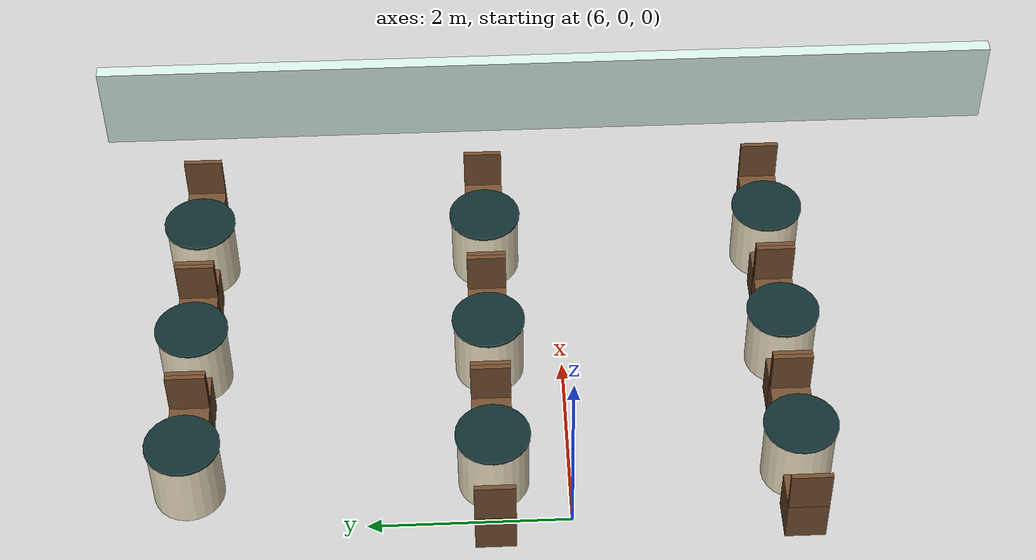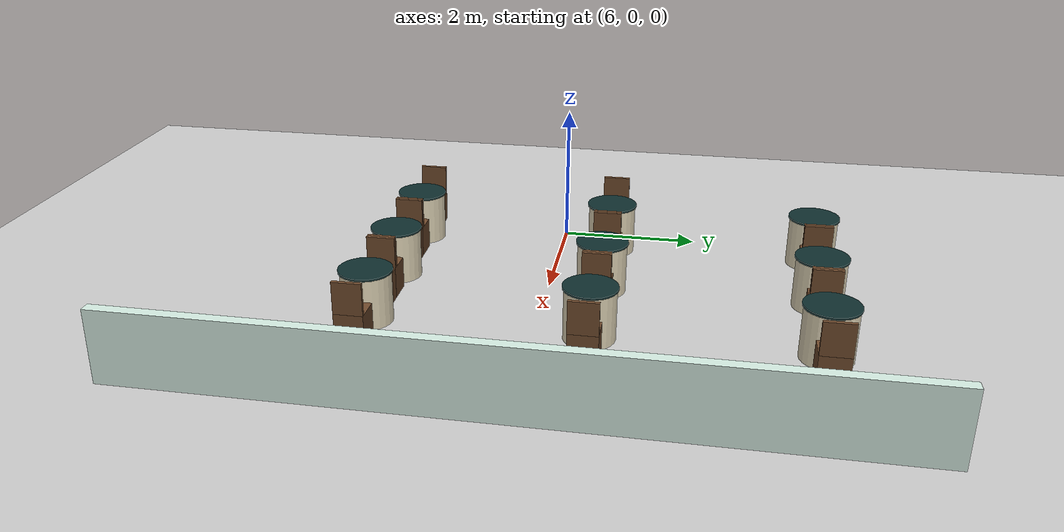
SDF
<sdf version="1.6">
 <world name="restaurante">
  <include><uri>model://sun</uri></include>
  <include><uri>model://ground_plane</uri></include>
  <model name="parede_leste">
   <static>true</static>
   <pose>11.675 0.000 0 0 0 0.0000</pose>
   <link name="link">
    <collision name="colisao">
     <pose>0 0 0.500 0 0 0</pose>
     <geometry><box><size>0.150 10.000 1.000</size></box></geometry>
    </collision>
    <visual name="visual">
     <pose>0 0 0.500 0 0 0</pose>
     <geometry><box><size>0.150 10.000 1.000</size></box></geometry>
     <material>
      <ambient>0.84 0.93 0.89 1</ambient>
      <diffuse>0.84 0.93 0.89 1</diffuse>
      <specular>0.1 0.1 0.1 1</specular>
     </material>
    </visual>
   </link>
  </model>
  <model name="mesa_3">
   <static>true</static>
   <pose>6.500 3.750 0 0 0 0</pose>
   <link name="link">
    <collision name="colisao">
     <pose>0 0 0.375 0 0 0</pose>
     <geometry><cylinder><radius>0.350</radius><length>0.750</length></cylinder></geometry>
    </collision>
    <visual name="toalha">
     <pose>0 0 0.360 0 0 0</pose>
     <geometry><cylinder><radius>0.350</radius><length>0.720</length></cylinder></geometry>
     <material>
      <ambient>0.99 0.94 0.81 1</ambient>
      <diffuse>0.99 0.94 0.81 1</diffuse>
      <specular>0.1 0.1 0.1 1</specular>
     </material>
    </visual>
    <visual name="tampo">
     <pose>0 0 0.735 0 0 0</pose>
     <geometry><cylinder><radius>0.370</radius><length>0.030</length></cylinder></geometry>
     <material>
      <ambient>0.06 0.18 0.18 1</ambient>
      <diffuse>0.06 0.18 0.18 1</diffuse>
      <specular>0.1 0.1 0.1 1</specular>
     </material>
    </visual>
   </link>
  </model>
  <model name="mesa_4">
   <static>true</static>
   <pose>8.000 3.750 0 0 0 0</pose>
   <link name="link">
    <collision name="colisao">
     <pose>0 0 0.375 0 0 0</pose>
     <geometry><cylinder><radius>0.350</radius><length>0.750</length></cylinder></geometry>
    </collision>
    <visual name="toalha">
     <pose>0 0 0.360 0 0 0</pose>
     <geometry><cylinder><radius>0.350</radius><length>0.720</length></cylinder></geometry>
     <material>
      <ambient>0.99 0.94 0.81 1</ambient>
      <diffuse>0.99 0.94 0.81 1</diffuse>
      <specular>0.1 0.1 0.1 1</specular>
     </material>
    </visual>
    <visual name="tampo">
     <pose>0 0 0.735 0 0 0</pose>
     <geometry><cylinder><radius>0.370</radius><length>0.030</length></cylinder></geometry>
     <material>
      <ambient>0.06 0.18 0.18 1</ambient>
      <diffuse>0.06 0.18 0.18 1</diffuse>
      <specular>0.1 0.1 0.1 1</specular>
     </material>
    </visual>
   </link>
  </model>
  <model name="mesa_5">
   <static>true</static>
   <pose>9.500 3.750 0 0 0 0</pose>
   <link name="link">
    <collision name="colisao">
     <pose>0 0 0.375 0 0 0</pose>
     <geometry><cylinder><radius>0.350</radius><length>0.750</length></cylinder></geometry>
    </collision>
    <visual name="toalha">
     <pose>0 0 0.360 0 0 0</pose>
     <geometry><cylinder><radius>0.350</radius><length>0.720</length></cylinder></geometry>
     <material>
      <ambient>0.99 0.94 0.81 1</ambient>
      <diffuse>0.99 0.94 0.81 1</diffuse>
      <specular>0.1 0.1 0.1 1</specular>
     </material>
    </visual>
    <visual name="tampo">
     <pose>0 0 0.735 0 0 0</pose>
     <geometry><cylinder><radius>0.370</radius><length>0.030</length></cylinder></geometry>
     <material>
      <ambient>0.06 0.18 0.18 1</ambient>
      <diffuse>0.06 0.18 0.18 1</diffuse>
      <specular>0.1 0.1 0.1 1</specular>
     </material>
    </visual>
   </link>
  </model>
  <model name="mesa_8">
   <static>true</static>
   <pose>6.500 0.750 0 0 0 0</pose>
   <link name="link">
    <collision name="colisao">
     <pose>0 0 0.375 0 0 0</pose>
     <geometry><cylinder><radius>0.350</radius><length>0.750</length></cylinder></geometry>
    </collision>
    <visual name="toalha">
     <pose>0 0 0.360 0 0 0</pose>
     <geometry><cylinder><radius>0.350</radius><length>0.720</length></cylinder></geometry>
     <material>
      <ambient>0.99 0.94 0.81 1</ambient>
      <diffuse>0.99 0.94 0.81 1</diffuse>
      <specular>0.1 0.1 0.1 1</specular>
     </material>
    </visual>
    <visual name="tampo">
     <pose>0 0 0.735 0 0 0</pose>
     <geometry><cylinder><radius>0.370</radius><length>0.030</length></cylinder></geometry>
     <material>
      <ambient>0.06 0.18 0.18 1</ambient>
      <diffuse>0.06 0.18 0.18 1</diffuse>
      <specular>0.1 0.1 0.1 1</specular>
     </material>
    </visual>
   </link>
  </model>
  <model name="mesa_9">
   <static>true</static>
   <pose>8.000 0.750 0 0 0 0</pose>
   <link name="link">
    <collision name="colisao">
     <pose>0 0 0.375 0 0 0</pose>
     <geometry><cylinder><radius>0.350</radius><length>0.750</length></cylinder></geometry>
    </collision>
    <visual name="toalha">
     <pose>0 0 0.360 0 0 0</pose>
     <geometry><cylinder><radius>0.350</radius><length>0.720</length></cylinder></geometry>
     <material>
      <ambient>0.99 0.94 0.81 1</ambient>
      <diffuse>0.99 0.94 0.81 1</diffuse>
      <specular>0.1 0.1 0.1 1</specular>
     </material>
    </visual>
    <visual name="tampo">
     <pose>0 0 0.735 0 0 0</pose>
     <geometry><cylinder><radius>0.370</radius><length>0.030</length></cylinder></geometry>
     <material>
      <ambient>0.06 0.18 0.18 1</ambient>
      <diffuse>0.06 0.18 0.18 1</diffuse>
      <specular>0.1 0.1 0.1 1</specular>
     </material>
    </visual>
   </link>
  </model>
  <model name="mesa_10">
   <static>true</static>
   <pose>9.500 0.750 0 0 0 0</pose>
   <link name="link">
    <collision name="colisao">
     <pose>0 0 0.375 0 0 0</pose>
     <geometry><cylinder><radius>0.350</radius><length>0.750</length></cylinder></geometry>
    </collision>
    <visual name="toalha">
     <pose>0 0 0.360 0 0 0</pose>
     <geometry><cylinder><radius>0.350</radius><length>0.720</length></cylinder></geometry>
     <material>
      <ambient>0.99 0.94 0.81 1</ambient>
      <diffuse>0.99 0.94 0.81 1</diffuse>
      <specular>0.1 0.1 0.1 1</specular>
     </material>
    </visual>
    <visual name="tampo">
     <pose>0 0 0.735 0 0 0</pose>
     <geometry><cylinder><radius>0.370</radius><length>0.030</length></cylinder></geometry>
     <material>
      <ambient>0.06 0.18 0.18 1</ambient>
      <diffuse>0.06 0.18 0.18 1</diffuse>
      <specular>0.1 0.1 0.1 1</specular>
     </material>
    </visual>
   </link>
  </model>
  <model name="mesa_13">
   <static>true</static>
   <pose>6.500 -2.250 0 0 0 0</pose>
   <link name="link">
    <collision name="colisao">
     <pose>0 0 0.375 0 0 0</pose>
     <geometry><cylinder><radius>0.350</radius><length>0.750</length></cylinder></geometry>
    </collision>
    <visual name="toalha">
     <pose>0 0 0.360 0 0 0</pose>
     <geometry><cylinder><radius>0.350</radius><length>0.720</length></cylinder></geometry>
     <material>
      <ambient>0.99 0.94 0.81 1</ambient>
      <diffuse>0.99 0.94 0.81 1</diffuse>
      <specular>0.1 0.1 0.1 1</specular>
     </material>
    </visual>
    <visual name="tampo">
     <pose>0 0 0.735 0 0 0</pose>
     <geometry><cylinder><radius>0.370</radius><length>0.030</length></cylinder></geometry>
     <material>
      <ambient>0.06 0.18 0.18 1</ambient>
      <diffuse>0.06 0.18 0.18 1</diffuse>
      <specular>0.1 0.1 0.1 1</specular>
     </material>
    </visual>
   </link>
  </model>
  <model name="mesa_14">
   <static>true</static>
   <pose>8.000 -2.250 0 0 0 0</pose>
   <link name="link">
    <collision name="colisao">
     <pose>0 0 0.375 0 0 0</pose>
     <geometry><cylinder><radius>0.350</radius><length>0.750</length></cylinder></geometry>
    </collision>
    <visual name="toalha">
     <pose>0 0 0.360 0 0 0</pose>
     <geometry><cylinder><radius>0.350</radius><length>0.720</length></cylinder></geometry>
     <material>
      <ambient>0.99 0.94 0.81 1</ambient>
      <diffuse>0.99 0.94 0.81 1</diffuse>
      <specular>0.1 0.1 0.1 1</specular>
     </material>
    </visual>
    <visual name="tampo">
     <pose>0 0 0.735 0 0 0</pose>
     <geometry><cylinder><radius>0.370</radius><length>0.030</length></cylinder></geometry>
     <material>
      <ambient>0.06 0.18 0.18 1</ambient>
      <diffuse>0.06 0.18 0.18 1</diffuse>
      <specular>0.1 0.1 0.1 1</specular>
     </material>
    </visual>
   </link>
  </model>
  <model name="mesa_15">
   <static>true</static>
   <pose>9.500 -2.250 0 0 0 0</pose>
   <link name="link">
    <collision name="colisao">
     <pose>0 0 0.375 0 0 0</pose>
     <geometry><cylinder><radius>0.350</radius><length>0.750</length></cylinder></geometry>
    </collision>
    <visual name="toalha">
     <pose>0 0 0.360 0 0 0</pose>
     <geometry><cylinder><radius>0.350</radius><length>0.720</length></cylinder></geometry>
     <material>
      <ambient>0.99 0.94 0.81 1</ambient>
      <diffuse>0.99 0.94 0.81 1</diffuse>
      <specular>0.1 0.1 0.1 1</specular>
     </material>
    </visual>
    <visual name="tampo">
     <pose>0 0 0.735 0 0 0</pose>
     <geometry><cylinder><radius>0.370</radius><length>0.030</length></cylinder></geometry>
     <material>
      <ambient>0.06 0.18 0.18 1</ambient>
      <diffuse>0.06 0.18 0.18 1</diffuse>
      <specular>0.1 0.1 0.1 1</specular>
     </material>
    </visual>
   </link>
  </model>
  <model name="cadeira_mesa_3_b">
   <static>true</static>
   <pose>7.100 3.750 0 0 0 3.1416</pose>
   <link name="link">
    <collision name="colisao">
     <pose>0 0 0.225 0 0 0</pose>
     <geometry><box><size>0.400 0.400 0.450</size></box></geometry>
    </collision>
    <visual name="assento">
     <pose>0 0 0.225 0 0 0</pose>
     <geometry><box><size>0.400 0.400 0.450</size></box></geometry>
     <material>
      <ambient>0.45 0.30 0.18 1</ambient>
      <diffuse>0.45 0.30 0.18 1</diffuse>
      <specular>0.1 0.1 0.1 1</specular>
     </material>
    </visual>
    <visual name="encosto">
     <pose>-0.175 0 0.675 0 0 0</pose>
     <geometry><box><size>0.050 0.400 0.450</size></box></geometry>
     <material>
      <ambient>0.45 0.30 0.18 1</ambient>
      <diffuse>0.45 0.30 0.18 1</diffuse>
      <specular>0.1 0.1 0.1 1</specular>
     </material>
    </visual>
   </link>
  </model>
  <model name="cadeira_mesa_4_a">
   <static>true</static>
   <pose>7.400 3.750 0 0 0 0.0000</pose>
   <link name="link">
    <collision name="colisao">
     <pose>0 0 0.225 0 0 0</pose>
     <geometry><box><size>0.400 0.400 0.450</size></box></geometry>
    </collision>
    <visual name="assento">
     <pose>0 0 0.225 0 0 0</pose>
     <geometry><box><size>0.400 0.400 0.450</size></box></geometry>
     <material>
      <ambient>0.45 0.30 0.18 1</ambient>
      <diffuse>0.45 0.30 0.18 1</diffuse>
      <specular>0.1 0.1 0.1 1</specular>
     </material>
    </visual>
    <visual name="encosto">
     <pose>-0.175 0 0.675 0 0 0</pose>
     <geometry><box><size>0.050 0.400 0.450</size></box></geometry>
     <material>
      <ambient>0.45 0.30 0.18 1</ambient>
      <diffuse>0.45 0.30 0.18 1</diffuse>
      <specular>0.1 0.1 0.1 1</specular>
     </material>
    </visual>
   </link>
  </model>
  <model name="cadeira_mesa_4_b">
   <static>true</static>
   <pose>8.600 3.750 0 0 0 3.1416</pose>
   <link name="link">
    <collision name="colisao">
     <pose>0 0 0.225 0 0 0</pose>
     <geometry><box><size>0.400 0.400 0.450</size></box></geometry>
    </collision>
    <visual name="assento">
     <pose>0 0 0.225 0 0 0</pose>
     <geometry><box><size>0.400 0.400 0.450</size></box></geometry>
     <material>
      <ambient>0.45 0.30 0.18 1</ambient>
      <diffuse>0.45 0.30 0.18 1</diffuse>
      <specular>0.1 0.1 0.1 1</specular>
     </material>
    </visual>
    <visual name="encosto">
     <pose>-0.175 0 0.675 0 0 0</pose>
     <geometry><box><size>0.050 0.400 0.450</size></box></geometry>
     <material>
      <ambient>0.45 0.30 0.18 1</ambient>
      <diffuse>0.45 0.30 0.18 1</diffuse>
      <specular>0.1 0.1 0.1 1</specular>
     </material>
    </visual>
   </link>
  </model>
  <model name="cadeira_mesa_5_a">
   <static>true</static>
   <pose>8.900 3.750 0 0 0 0.0000</pose>
   <link name="link">
    <collision name="colisao">
     <pose>0 0 0.225 0 0 0</pose>
     <geometry><box><size>0.400 0.400 0.450</size></box></geometry>
    </collision>
    <visual name="assento">
     <pose>0 0 0.225 0 0 0</pose>
     <geometry><box><size>0.400 0.400 0.450</size></box></geometry>
     <material>
      <ambient>0.45 0.30 0.18 1</ambient>
      <diffuse>0.45 0.30 0.18 1</diffuse>
      <specular>0.1 0.1 0.1 1</specular>
     </material>
    </visual>
    <visual name="encosto">
     <pose>-0.175 0 0.675 0 0 0</pose>
     <geometry><box><size>0.050 0.400 0.450</size></box></geometry>
     <material>
      <ambient>0.45 0.30 0.18 1</ambient>
      <diffuse>0.45 0.30 0.18 1</diffuse>
      <specular>0.1 0.1 0.1 1</specular>
     </material>
    </visual>
   </link>
  </model>
  <model name="cadeira_mesa_5_b">
   <static>true</static>
   <pose>10.100 3.750 0 0 0 3.1416</pose>
   <link name="link">
    <collision name="colisao">
     <pose>0 0 0.225 0 0 0</pose>
     <geometry><box><size>0.400 0.400 0.450</size></box></geometry>
    </collision>
    <visual name="assento">
     <pose>0 0 0.225 0 0 0</pose>
     <geometry><box><size>0.400 0.400 0.450</size></box></geometry>
     <material>
      <ambient>0.45 0.30 0.18 1</ambient>
      <diffuse>0.45 0.30 0.18 1</diffuse>
      <specular>0.1 0.1 0.1 1</specular>
     </material>
    </visual>
    <visual name="encosto">
     <pose>-0.175 0 0.675 0 0 0</pose>
     <geometry><box><size>0.050 0.400 0.450</size></box></geometry>
     <material>
      <ambient>0.45 0.30 0.18 1</ambient>
      <diffuse>0.45 0.30 0.18 1</diffuse>
      <specular>0.1 0.1 0.1 1</specular>
     </material>
    </visual>
   </link>
  </model>
  <model name="cadeira_mesa_8_a">
   <static>true</static>
   <pose>5.900 0.750 0 0 0 0.0000</pose>
   <link name="link">
    <collision name="colisao">
     <pose>0 0 0.225 0 0 0</pose>
     <geometry><box><size>0.400 0.400 0.450</size></box></geometry>
    </collision>
    <visual name="assento">
     <pose>0 0 0.225 0 0 0</pose>
     <geometry><box><size>0.400 0.400 0.450</size></box></geometry>
     <material>
      <ambient>0.45 0.30 0.18 1</ambient>
      <diffuse>0.45 0.30 0.18 1</diffuse>
      <specular>0.1 0.1 0.1 1</specular>
     </material>
    </visual>
    <visual name="encosto">
     <pose>-0.175 0 0.675 0 0 0</pose>
     <geometry><box><size>0.050 0.400 0.450</size></box></geometry>
     <material>
      <ambient>0.45 0.30 0.18 1</ambient>
      <diffuse>0.45 0.30 0.18 1</diffuse>
      <specular>0.1 0.1 0.1 1</specular>
     </material>
    </visual>
   </link>
  </model>
  <model name="cadeira_mesa_8_b">
   <static>true</static>
   <pose>7.100 0.750 0 0 0 3.1416</pose>
   <link name="link">
    <collision name="colisao">
     <pose>0 0 0.225 0 0 0</pose>
     <geometry><box><size>0.400 0.400 0.450</size></box></geometry>
    </collision>
    <visual name="assento">
     <pose>0 0 0.225 0 0 0</pose>
     <geometry><box><size>0.400 0.400 0.450</size></box></geometry>
     <material>
      <ambient>0.45 0.30 0.18 1</ambient>
      <diffuse>0.45 0.30 0.18 1</diffuse>
      <specular>0.1 0.1 0.1 1</specular>
     </material>
    </visual>
    <visual name="encosto">
     <pose>-0.175 0 0.675 0 0 0</pose>
     <geometry><box><size>0.050 0.400 0.450</size></box></geometry>
     <material>
      <ambient>0.45 0.30 0.18 1</ambient>
      <diffuse>0.45 0.30 0.18 1</diffuse>
      <specular>0.1 0.1 0.1 1</specular>
     </material>
    </visual>
   </link>
  </model>
  <model name="cadeira_mesa_9_a">
   <static>true</static>
   <pose>7.400 0.750 0 0 0 0.0000</pose>
   <link name="link">
    <collision name="colisao">
     <pose>0 0 0.225 0 0 0</pose>
     <geometry><box><size>0.400 0.400 0.450</size></box></geometry>
    </collision>
    <visual name="assento">
     <pose>0 0 0.225 0 0 0</pose>
     <geometry><box><size>0.400 0.400 0.450</size></box></geometry>
     <material>
      <ambient>0.45 0.30 0.18 1</ambient>
      <diffuse>0.45 0.30 0.18 1</diffuse>
      <specular>0.1 0.1 0.1 1</specular>
     </material>
    </visual>
    <visual name="encosto">
     <pose>-0.175 0 0.675 0 0 0</pose>
     <geometry><box><size>0.050 0.400 0.450</size></box></geometry>
     <material>
      <ambient>0.45 0.30 0.18 1</ambient>
      <diffuse>0.45 0.30 0.18 1</diffuse>
      <specular>0.1 0.1 0.1 1</specular>
     </material>
    </visual>
   </link>
  </model>
  <model name="cadeira_mesa_9_b">
   <static>true</static>
   <pose>8.600 0.750 0 0 0 3.1416</pose>
   <link name="link">
    <collision name="colisao">
     <pose>0 0 0.225 0 0 0</pose>
     <geometry><box><size>0.400 0.400 0.450</size></box></geometry>
    </collision>
    <visual name="assento">
     <pose>0 0 0.225 0 0 0</pose>
     <geometry><box><size>0.400 0.400 0.450</size></box></geometry>
     <material>
      <ambient>0.45 0.30 0.18 1</ambient>
      <diffuse>0.45 0.30 0.18 1</diffuse>
      <specular>0.1 0.1 0.1 1</specular>
     </material>
    </visual>
    <visual name="encosto">
     <pose>-0.175 0 0.675 0 0 0</pose>
     <geometry><box><size>0.050 0.400 0.450</size></box></geometry>
     <material>
      <ambient>0.45 0.30 0.18 1</ambient>
      <diffuse>0.45 0.30 0.18 1</diffuse>
      <specular>0.1 0.1 0.1 1</specular>
     </material>
    </visual>
   </link>
  </model>
  <model name="cadeira_mesa_10_a">
   <static>true</static>
   <pose>8.900 0.750 0 0 0 0.0000</pose>
   <link name="link">
    <collision name="colisao">
     <pose>0 0 0.225 0 0 0</pose>
     <geometry><box><size>0.400 0.400 0.450</size></box></geometry>
    </collision>
    <visual name="assento">
     <pose>0 0 0.225 0 0 0</pose>
     <geometry><box><size>0.400 0.400 0.450</size></box></geometry>
     <material>
      <ambient>0.45 0.30 0.18 1</ambient>
      <diffuse>0.45 0.30 0.18 1</diffuse>
      <specular>0.1 0.1 0.1 1</specular>
     </material>
    </visual>
    <visual name="encosto">
     <pose>-0.175 0 0.675 0 0 0</pose>
     <geometry><box><size>0.050 0.400 0.450</size></box></geometry>
     <material>
      <ambient>0.45 0.30 0.18 1</ambient>
      <diffuse>0.45 0.30 0.18 1</diffuse>
      <specular>0.1 0.1 0.1 1</specular>
     </material>
    </visual>
   </link>
  </model>
  <model name="cadeira_mesa_10_b">
   <static>true</static>
   <pose>10.100 0.750 0 0 0 3.1416</pose>
   <link name="link">
    <collision name="colisao">
     <pose>0 0 0.225 0 0 0</pose>
     <geometry><box><size>0.400 0.400 0.450</size></box></geometry>
    </collision>
    <visual name="assento">
     <pose>0 0 0.225 0 0 0</pose>
     <geometry><box><size>0.400 0.400 0.450</size></box></geometry>
     <material>
      <ambient>0.45 0.30 0.18 1</ambient>
      <diffuse>0.45 0.30 0.18 1</diffuse>
      <specular>0.1 0.1 0.1 1</specular>
     </material>
    </visual>
    <visual name="encosto">
     <pose>-0.175 0 0.675 0 0 0</pose>
     <geometry><box><size>0.050 0.400 0.450</size></box></geometry>
     <material>
      <ambient>0.45 0.30 0.18 1</ambient>
      <diffuse>0.45 0.30 0.18 1</diffuse>
      <specular>0.1 0.1 0.1 1</specular>
     </material>
    </visual>
   </link>
  </model>
  <model name="cadeira_mesa_13_a">
   <static>true</static>
   <pose>5.900 -2.250 0 0 0 0.0000</pose>
   <link name="link">
    <collision name="colisao">
     <pose>0 0 0.225 0 0 0</pose>
     <geometry><box><size>0.400 0.400 0.450</size></box></geometry>
    </collision>
    <visual name="assento">
     <pose>0 0 0.225 0 0 0</pose>
     <geometry><box><size>0.400 0.400 0.450</size></box></geometry>
     <material>
      <ambient>0.45 0.30 0.18 1</ambient>
      <diffuse>0.45 0.30 0.18 1</diffuse>
      <specular>0.1 0.1 0.1 1</specular>
     </material>
    </visual>
    <visual name="encosto">
     <pose>-0.175 0 0.675 0 0 0</pose>
     <geometry><box><size>0.050 0.400 0.450</size></box></geometry>
     <material>
      <ambient>0.45 0.30 0.18 1</ambient>
      <diffuse>0.45 0.30 0.18 1</diffuse>
      <specular>0.1 0.1 0.1 1</specular>
     </material>
    </visual>
   </link>
  </model>
  <model name="cadeira_mesa_13_b">
   <static>true</static>
   <pose>7.100 -2.250 0 0 0 3.1416</pose>
   <link name="link">
    <collision name="colisao">
     <pose>0 0 0.225 0 0 0</pose>
     <geometry><box><size>0.400 0.400 0.450</size></box></geometry>
    </collision>
    <visual name="assento">
     <pose>0 0 0.225 0 0 0</pose>
     <geometry><box><size>0.400 0.400 0.450</size></box></geometry>
     <material>
      <ambient>0.45 0.30 0.18 1</ambient>
      <diffuse>0.45 0.30 0.18 1</diffuse>
      <specular>0.1 0.1 0.1 1</specular>
     </material>
    </visual>
    <visual name="encosto">
     <pose>-0.175 0 0.675 0 0 0</pose>
     <geometry><box><size>0.050 0.400 0.450</size></box></geometry>
     <material>
      <ambient>0.45 0.30 0.18 1</ambient>
      <diffuse>0.45 0.30 0.18 1</diffuse>
      <specular>0.1 0.1 0.1 1</specular>
     </material>
    </visual>
   </link>
  </model>
  <model name="cadeira_mesa_14_a">
   <static>true</static>
   <pose>7.400 -2.250 0 0 0 0.0000</pose>
   <link name="link">
    <collision name="colisao">
     <pose>0 0 0.225 0 0 0</pose>
     <geometry><box><size>0.400 0.400 0.450</size></box></geometry>
    </collision>
    <visual name="assento">
     <pose>0 0 0.225 0 0 0</pose>
     <geometry><box><size>0.400 0.400 0.450</size></box></geometry>
     <material>
      <ambient>0.45 0.30 0.18 1</ambient>
      <diffuse>0.45 0.30 0.18 1</diffuse>
      <specular>0.1 0.1 0.1 1</specular>
     </material>
    </visual>
    <visual name="encosto">
     <pose>-0.175 0 0.675 0 0 0</pose>
     <geometry><box><size>0.050 0.400 0.450</size></box></geometry>
     <material>
      <ambient>0.45 0.30 0.18 1</ambient>
      <diffuse>0.45 0.30 0.18 1</diffuse>
      <specular>0.1 0.1 0.1 1</specular>
     </material>
    </visual>
   </link>
  </model>
  <model name="cadeira_mesa_14_b">
   <static>true</static>
   <pose>8.600 -2.250 0 0 0 3.1416</pose>
   <link name="link">
    <collision name="colisao">
     <pose>0 0 0.225 0 0 0</pose>
     <geometry><box><size>0.400 0.400 0.450</size></box></geometry>
    </collision>
    <visual name="assento">
     <pose>0 0 0.225 0 0 0</pose>
     <geometry><box><size>0.400 0.400 0.450</size></box></geometry>
     <material>
      <ambient>0.45 0.30 0.18 1</ambient>
      <diffuse>0.45 0.30 0.18 1</diffuse>
      <specular>0.1 0.1 0.1 1</specular>
     </material>
    </visual>
    <visual name="encosto">
     <pose>-0.175 0 0.675 0 0 0</pose>
     <geometry><box><size>0.050 0.400 0.450</size></box></geometry>
     <material>
      <ambient>0.45 0.30 0.18 1</ambient>
      <diffuse>0.45 0.30 0.18 1</diffuse>
      <specular>0.1 0.1 0.1 1</specular>
     </material>
    </visual>
   </link>
  </model>
  <model name="cadeira_mesa_15_a">
   <static>true</static>
   <pose>8.900 -2.250 0 0 0 0.0000</pose>
   <link name="link">
    <collision name="colisao">
     <pose>0 0 0.225 0 0 0</pose>
     <geometry><box><size>0.400 0.400 0.450</size></box></geometry>
    </collision>
    <visual name="assento">
     <pose>0 0 0.225 0 0 0</pose>
     <geometry><box><size>0.400 0.400 0.450</size></box></geometry>
     <material>
      <ambient>0.45 0.30 0.18 1</ambient>
      <diffuse>0.45 0.30 0.18 1</diffuse>
      <specular>0.1 0.1 0.1 1</specular>
     </material>
    </visual>
    <visual name="encosto">
     <pose>-0.175 0 0.675 0 0 0</pose>
     <geometry><box><size>0.050 0.400 0.450</size></box></geometry>
     <material>
      <ambient>0.45 0.30 0.18 1</ambient>
      <diffuse>0.45 0.30 0.18 1</diffuse>
      <specular>0.1 0.1 0.1 1</specular>
     </material>
    </visual>
   </link>
  </model>
  <model name="cadeira_mesa_15_b">
   <static>true</static>
   <pose>10.100 -2.250 0 0 0 3.1416</pose>
   <link name="link">
    <collision name="colisao">
     <pose>0 0 0.225 0 0 0</pose>
     <geometry><box><size>0.400 0.400 0.450</size></box></geometry>
    </collision>
    <visual name="assento">
     <pose>0 0 0.225 0 0 0</pose>
     <geometry><box><size>0.400 0.400 0.450</size></box></geometry>
     <material>
      <ambient>0.45 0.30 0.18 1</ambient>
      <diffuse>0.45 0.30 0.18 1</diffuse>
      <specular>0.1 0.1 0.1 1</specular>
     </material>
    </visual>
    <visual name="encosto">
     <pose>-0.175 0 0.675 0 0 0</pose>
     <geometry><box><size>0.050 0.400 0.450</size></box></geometry>
     <material>
      <ambient>0.45 0.30 0.18 1</ambient>
      <diffuse>0.45 0.30 0.18 1</diffuse>
      <specular>0.1 0.1 0.1 1</specular>
     </material>
    </visual>
   </link>
  </model>
 </world>
</sdf>
